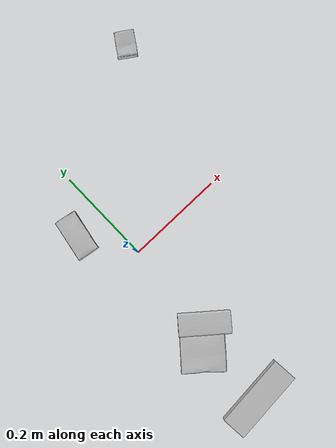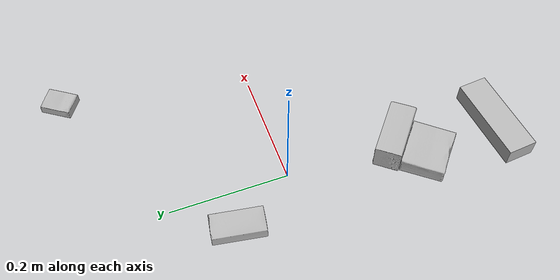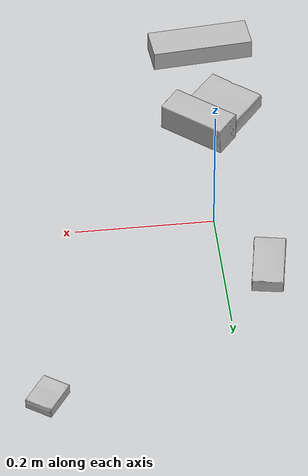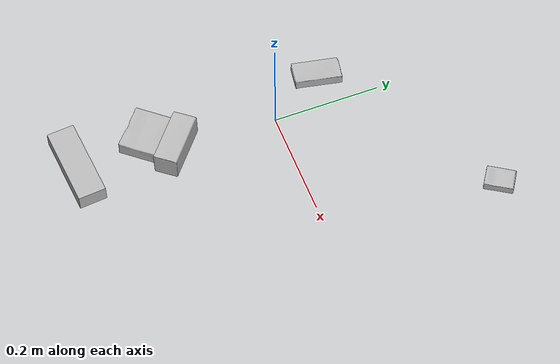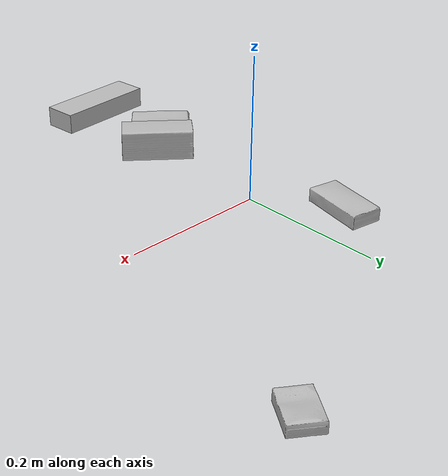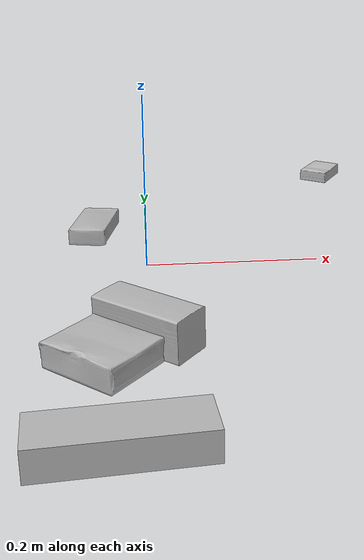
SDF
<sdf version="1.4">
  <world name="default">
    <light name="light1" type="point">
      <pose>0 0 1 0 0 0</pose>
      <diffuse>3 3 3 1</diffuse>
      <specular>3 3 3 1</specular>
    </light>
    <light name="light2" type="point">
      <pose>0 0.5 2 0 0 0</pose>
      <diffuse>1 1 1 1</diffuse>
      <specular>1 1 1 1</specular>
    </light>
    <light name="light3" type="point">
      <pose>0 0.5 2 0 0 0</pose>
      <diffuse>3 3 3 1</diffuse>
      <specular>3 3 3 1</specular>
    </light>
    <scene>
      <ambient>0.7 0.7 0.7</ambient>
    </scene>
    <model name="box1">
      <link name="link_box1">
        <collision name="default">
          <geometry>
            <mesh>
              <uri>model://sugar_box/collision_meshes/collision.obj</uri>
              <scale>0.5 0.5 0.5</scale>
            </mesh>
          </geometry>
          <surface>
            <friction>
              <ode>
                <mu>0.5</mu>
                <mu2>0.5</mu2>
              </ode>
            </friction>
          <contact>
        <ode>
            <max_vel>0</max_vel>
            <min_depth>0.0001</min_depth>
            <kp>1e8</kp>
        </ode>
    </contact></surface>
        </collision>
        <visual name="default">
          <geometry>
            <mesh>
              <uri>model://sugar_box/visual_meshes/visual.dae</uri>
              <scale>0.5 0.5 0.5</scale>
            </mesh>
          </geometry>
        </visual>
        <inertial>
          <mass>0.05016465485095978</mass>
          <pose>0.0005171863595023751 1.924554817378521e-05 -0.0001818240125430748 -0.00040462615463102695 0.0010506635220671036 0.0026153792546614123</pose>
          <inertia>
            <ixx>1.0449262e-05</ixx>
            <iyy>3.3774166e-05</iyy>
            <izz>4.0431696e-05</izz>
            <ixy>0</ixy>
            <ixz>0</ixz>
            <iyz>0</iyz>
          </inertia>
        </inertial>
      </link>
      <pose>-0.06455682963132858 0.10646544396877289 0.011399302631616592 0.0007752903595385685 -0.023432590254335375 -1.7532527195839447</pose>
    </model>
    <model name="box2">
      <link name="link_box2">
        <collision name="default">
          <geometry>
            <mesh>
              <uri>model://cracker_box/collision_meshes/collision.obj</uri>
              <scale>0.25 0.25 0.25</scale>
            </mesh>
          </geometry>
          <surface>
            <friction>
              <ode>
                <mu>0.5</mu>
                <mu2>0.5</mu2>
              </ode>
            </friction>
          <contact>
        <ode>
            <max_vel>0</max_vel>
            <min_depth>0.0001</min_depth>
            <kp>1e8</kp>
        </ode>
    </contact></surface>
        </collision>
        <visual name="default">
          <geometry>
            <mesh>
              <uri>model://cracker_box/visual_meshes/visual.dae</uri>
              <scale>0.25 0.25 0.25</scale>
            </mesh>
          </geometry>
        </visual>
        <inertial>
          <mass>0.05325852707028389</mass>
          <pose>0.0002366033149883151 6.358561950037256e-05 -0.0004257383698131889 -0.000316207624135088 -0.011106486806293444 0.0025467950014945295</pose>
          <inertia>
            <ixx>8.46662e-06</ixx>
            <iyy>1.3980052e-05</iyy>
            <izz>1.995082e-05</izz>
            <ixy>0</ixy>
            <ixz>0</ixz>
            <iyz>0</iyz>
          </inertia>
        </inertial>
      </link>
      <pose>0.2683280110359192 0.3203936815261841 0.009096029214560986 -0.014050256725043937 -0.00501686012797959 0.9772304480528149</pose>
    </model>
    <model name="box3">
      <link name="link_box3">
        <collision name="default">
          <geometry>
            <mesh>
              <uri>model://wood_block/collision_meshes/collision.obj</uri>
              <scale>0.5 0.5 0.5</scale>
            </mesh>
          </geometry>
          <surface>
            <friction>
              <ode>
                <mu>0.5</mu>
                <mu2>0.5</mu2>
              </ode>
            </friction>
          <contact>
        <ode>
            <max_vel>0</max_vel>
            <min_depth>0.0001</min_depth>
            <kp>1e8</kp>
        </ode>
    </contact></surface>
        </collision>
        <visual name="default">
          <geometry>
            <mesh>
              <uri>model://wood_block/visual_meshes/visual.dae</uri>
              <scale>0.5 0.5 0.5</scale>
            </mesh>
          </geometry>
        </visual>
        <inertial>
          <mass>0.24977724254131317</mass>
          <pose>-2.9066577553749084e-06 -0.00028540476341731846 0.00013204291462898254 -0.05220975529066727 -0.005192695547513155 -0.006861377927637377</pose>
          <inertia>
            <ixx>8.355995e-05</ixx>
            <iyy>0.00026396586</iyy>
            <izz>0.00026297852</izz>
            <ixy>0</ixy>
            <ixz>0</ixz>
            <iyz>0</iyz>
          </inertia>
        </inertial>
      </link>
      <pose>-0.001309612882323563 -0.18877947330474854 0.022629262879490852 -0.005208390675873837 0.005718725889820784 2.457347031723253</pose>
    </model>
    <model name="box4">
      <link name="link_box4">
        <collision name="default">
          <geometry>
            <mesh>
              <uri>model://gelatin_box/collision_meshes/collision.obj</uri>
              <scale>1.0 1.0 1.0</scale>
            </mesh>
          </geometry>
          <surface>
            <friction>
              <ode>
                <mu>0.5</mu>
                <mu2>0.5</mu2>
              </ode>
            </friction>
          <contact>
        <ode>
            <max_vel>0</max_vel>
            <min_depth>0.0001</min_depth>
            <kp>1e8</kp>
        </ode>
    </contact></surface>
        </collision>
        <visual name="default">
          <geometry>
            <mesh>
              <uri>model://gelatin_box/visual_meshes/visual.dae</uri>
              <scale>1.0 1.0 1.0</scale>
            </mesh>
          </geometry>
        </visual>
        <inertial>
          <mass>0.142814502120018</mass>
          <pose>0.0004319618456065655 0.00011156871187267825 -0.0003640321083366871 -0.0010503719804291966 -0.004755819155973465 0.01644055947187314</pose>
          <inertia>
            <ixx>0.000100815385</ixx>
            <iyy>7.20119e-05</iyy>
            <izz>0.00015346348</izz>
            <ixy>0</ixy>
            <ixz>0</ixz>
            <iyz>0</iyz>
          </inertia>
        </inertial>
      </link>
      <pose>-0.04349353909492493 -0.22977101802825928 0.015168308280408382 0.0055969221849279565 -0.0073039230282004935 -2.282332249122152</pose>
    </model>
    <model name="box5">
      <link name="link_box5">
        <collision name="default">
          <geometry>
            <mesh>
              <uri>model://jenga/collision_meshes/collision.obj</uri>
              <scale>1.0 1.0 1.0</scale>
            </mesh>
          </geometry>
          <surface>
            <friction>
              <ode>
                <mu>0.5</mu>
                <mu2>0.5</mu2>
              </ode>
            </friction>
          <contact>
        <ode>
            <max_vel>0</max_vel>
            <min_depth>0.0001</min_depth>
            <kp>1e8</kp>
        </ode>
    </contact></surface>
        </collision>
        <visual name="default">
          <geometry>
            <mesh>
              <uri>model://jenga/visual_meshes/visual.dae</uri>
              <scale>1.0 1.0 1.0</scale>
            </mesh>
          </geometry>
        </visual>
        <inertial>
          <mass>0.11303283274173737</mass>
          <pose>-2.502855807051674e-07 -0.00010250010382151231 -4.0923401684267446e-05 0.0 -7.342155186052628e-07 0.0</pose>
          <inertia>
            <ixx>3.127893e-05</ixx>
            <iyy>0.00021194515</iyy>
            <izz>0.00022626946</izz>
            <ixy>0</ixy>
            <ixz>0</ixz>
            <iyz>0</iyz>
          </inertia>
        </inertial>
      </link>
      <pose>-0.024364035576581955 -0.36582809686660767 0.014999995008111 1.188460468990018e-08 1.3093891599999988e-10 0.08620233871200488</pose>
    </model>
  <physics type="ode">
      <max_contacts>50</max_contacts>
      <ode>
        <solver>
          <type>quick</type>
          <iters>75</iters>
        </solver>
        <constraints>
          <contact_max_correcting_vel>0</contact_max_correcting_vel>
          <contact_surface_layer>0</contact_surface_layer>
        </constraints>
      </ode>
    </physics></world>
</sdf>
